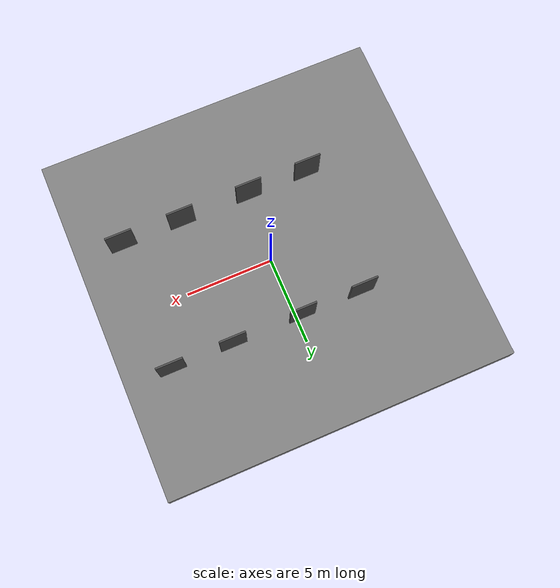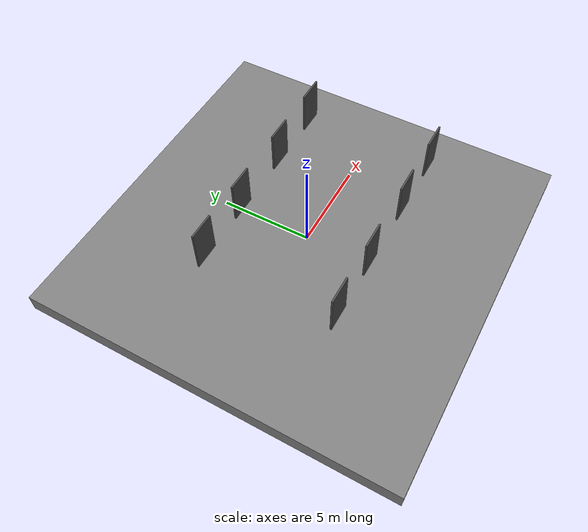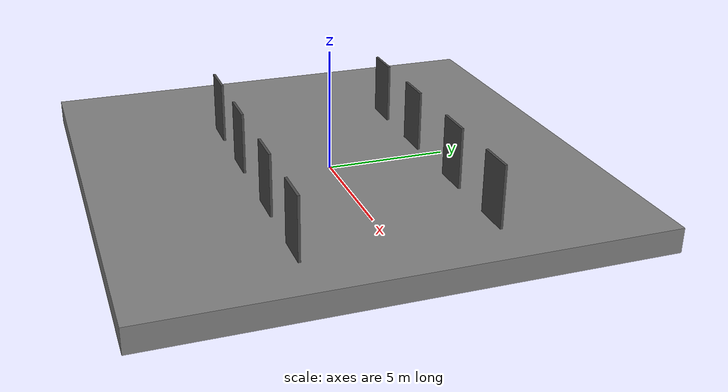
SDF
<sdf version="1.6">
  <world name="multi_room_world">

    <!-- Lighting -->
    <light type="point" name="sun">
      <pose>0 0 10 0 0 0</pose>
      <diffuse>0.8 0.8 0.8 1</diffuse>
      <specular>0.2 0.2 0.2 1</specular>
      <attenuation>
        <range>20</range>
        <linear>0.01</linear>
      </attenuation>
    </light>

    <!-- Physics -->
    <physics type="ode">
      <max_step_size>0.001</max_step_size>
      <real_time_factor>1</real_time_factor>
      <real_time_update_rate>1000</real_time_update_rate>
    </physics>

    <!-- Courtyard -->
    <model name="courtyard">
      <static>true</static>
      <pose>0 0 0 0 0 0</pose>
      <link name="courtyard_link">
        <visual name="courtyard_visual">
          <geometry>
            <box><size>20 20 1</size></box>
          </geometry>
          <material><diffuse>0.5 0.5 0.5 1</diffuse></material>
        </visual>
        <collision name="courtyard_collision">
          <geometry>
            <box><size>20 20 1</size></box>
          </geometry>
        </collision>
      </link>
    </model>

    <!-- Corridor Floor Tiles -->
    <model name="corridor_center">
      <static>true</static>
      <pose>0 0 0.01 0 0 0</pose>
      <link name="floor">
        <visual name="visual">
          <geometry><box><size>3 3 0.02</size></box></geometry>
          <material><diffuse>0.6 0.6 0.6 1</diffuse></material>
        </visual>
      </link>
    </model>

    <!-- Inter‑room walls with openings -->
    <!-- Library – Kitchen (NE wall) -->
    <model name="wall_library_kitchen">
      <static>true</static>
      <pose>3.75 3.75 1.5 0 0 0</pose>
      <link name="wall_left">
        <visual name="visual">
          <geometry><box><size>1.5 0.1 3</size></box></geometry>
          <material><diffuse>0.3 0.3 0.3 1</diffuse></material>
        </visual>
      </link>
      <link name="wall_right">
        <pose>3.5 0 0 0 0 0</pose>
        <visual name="visual">
          <geometry><box><size>1.5 0.1 3</size></box></geometry>
          <material><diffuse>0.3 0.3 0.3 1</diffuse></material>
        </visual>
      </link>
    </model>

    <!-- Kitchen – Garden (E‑S wall) -->
    <model name="wall_kitchen_garden">
      <static>true</static>
      <pose>3.75 -3.75 1.5 0 0 0</pose>
      <link name="wall_left">
        <visual name="visual">
          <geometry><box><size>1.5 0.1 3</size></box></geometry>
          <material><diffuse>0.3 0.3 0.3 1</diffuse></material>
        </visual>
      </link>
      <link name="wall_right">
        <pose>3.5 0 0 0 0 0</pose>
        <visual name="visual">
          <geometry><box><size>1.5 0.1 3</size></box></geometry>
          <material><diffuse>0.3 0.3 0.3 1</diffuse></material>
        </visual>
      </link>
    </model>

    <!-- Garden – Armory (SW wall) -->
    <model name="wall_garden_armory">
      <static>true</static>
      <pose>-3.75 -3.75 1.5 0 0 0</pose>
      <link name="wall_left">
        <visual name="visual">
          <geometry><box><size>1.5 0.1 3</size></box></geometry>
          <material><diffuse>0.3 0.3 0.3 1</diffuse></material>
        </visual>
      </link>
      <link name="wall_right">
        <pose>3.5 0 0 0 0 0</pose>
        <visual name="visual">
          <geometry><box><size>1.5 0.1 3</size></box></geometry>
          <material><diffuse>0.3 0.3 0.3 1</diffuse></material>
        </visual>
      </link>
    </model>

    <!-- Armory – Library (W‑N wall) -->
    <model name="wall_armory_library">
      <static>true</static>
      <pose>-3.75 3.75 1.5 0 0 0</pose>
      <link name="wall_left">
        <visual name="visual">
          <geometry><box><size>1.5 0.1 3</size></box></geometry>
          <material><diffuse>0.3 0.3 0.3 1</diffuse></material>
        </visual>
      </link>
      <link name="wall_right">
        <pose>3.5 0 0 0 0 0</pose>
        <visual name="visual">
          <geometry><box><size>1.5 0.1 3</size></box></geometry>
          <material><diffuse>0.3 0.3 0.3 1</diffuse></material>
        </visual>
      </link>
    </model>

  </world>
</sdf>
